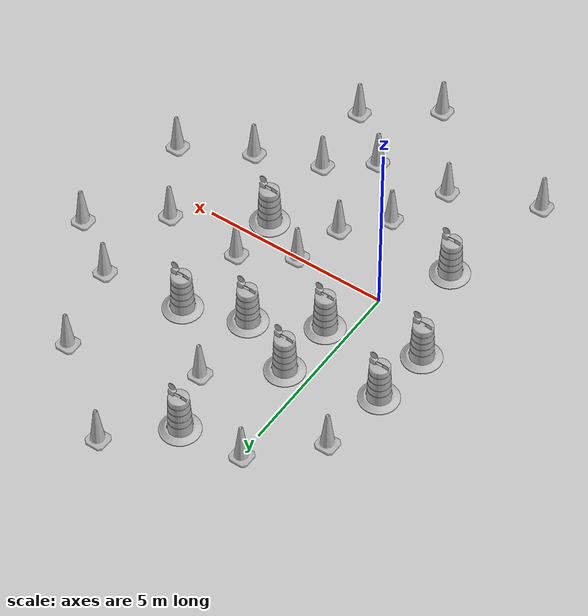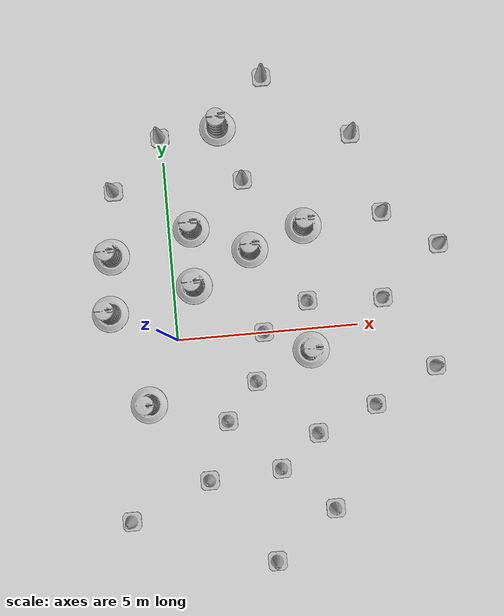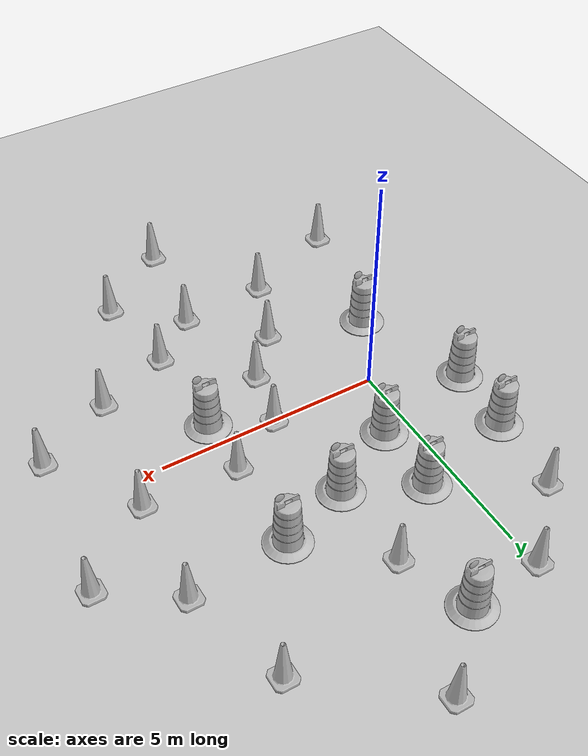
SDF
<sdf version="1.7">
 <world name="default">
  <light name="sun" type="directional">
   <pose>0 0 10 0 -0 0</pose>
   <diffuse>0.8 0.8 0.8 1</diffuse>
   <specular>0.2 0.2 0.2 1</specular>
   <attenuation>
    <range>1000</range>
    <constant>0.9</constant>
    <linear>0.01</linear>
    <quadratic>0.001</quadratic>
   </attenuation>
   <direction>-0.5 0.1 -0.9</direction>
   <spot><inner_angle>0</inner_angle><outer_angle>0</outer_angle><falloff>0</falloff></spot>
  </light>
  <model name="ground_plane">
   <static>1</static>
   <link name="link">
    <collision name="collision">
     <geometry><plane><normal>0 0 1</normal><size>100 100</size></plane></geometry>
     <surface>
      <contact><collide_bitmask>65535</collide_bitmask></contact>
      <friction><ode><mu>100</mu><mu2>50</mu2></ode></friction>
     </surface>
    </collision>
    <visual name="visual">
     <cast_shadows>0</cast_shadows>
     <geometry><plane><normal>0 0 1</normal><size>100 100</size></plane></geometry>
     <material>
      <script><uri>file://media/materials/scripts/gazebo.material</uri><name>Gazebo/Grey</name></script>
     </material>
    </visual>
   </link>
  </model>
  <gravity>0 0 -9.8</gravity>
  <magnetic_field>6e-06 2.3e-05 -4.2e-05</magnetic_field>
  <atmosphere type="adiabatic"/>
  <physics type="ode">
   <max_step_size>0.001</max_step_size>
   <real_time_factor>1</real_time_factor>
   <real_time_update_rate>1000</real_time_update_rate>
  </physics>
  <scene><ambient>0.4 0.4 0.4 1</ambient><background>0.7 0.7 0.7 1</background><shadows>1</shadows></scene>
  <audio><device>default</device></audio>
  <spherical_coordinates>
   <surface_model>EARTH_WGS84</surface_model>
   <latitude_deg>0</latitude_deg>
   <longitude_deg>0</longitude_deg>
   <elevation>0</elevation>
   <heading_deg>0</heading_deg>
  </spherical_coordinates>
  <model name="Construction Barrel">
   <link name="link">
    <inertial>
     <pose>0 0 0.4 0 -0 0</pose>
     <mass>500</mass>
     <inertia><ixx>51.2096</ixx><iyy>51.2096</iyy><izz>25</izz><ixy>0</ixy><ixz>0</ixz><iyz>0</iyz></inertia>
    </inertial>
    <collision name="collision">
     <geometry><mesh><uri>model://construction_barrel/meshes/construction_barrel.dae</uri></mesh></geometry>
    </collision>
    <visual name="visual">
     <geometry><mesh><uri>model://construction_barrel/meshes/construction_barrel.dae</uri></mesh></geometry>
    </visual>
   </link>
   <pose>0.576127 1.46314 -0 0 -0 -4.7e-05</pose>
  </model>
  <model name="Construction Barrel_clone">
   <link name="link">
    <inertial>
     <pose>0 0 0.4 0 -0 0</pose>
     <mass>500</mass>
     <inertia><ixx>51.2096</ixx><iyy>51.2096</iyy><izz>25</izz><ixy>0</ixy><ixz>0</ixz><iyz>0</iyz></inertia>
    </inertial>
    <collision name="collision">
     <geometry><mesh><uri>model://construction_barrel/meshes/construction_barrel.dae</uri></mesh></geometry>
    </collision>
    <visual name="visual">
     <geometry><mesh><uri>model://construction_barrel/meshes/construction_barrel.dae</uri></mesh></geometry>
    </visual>
   </link>
   <pose>2.20647 2.34684 -0 0 -0 -4.8e-05</pose>
  </model>
  <model name="Construction Cone">
   <link name="link">
    <collision name="collision">
     <geometry>
      <mesh><scale>10 10 10</scale><uri>model://construction_cone/meshes/construction_cone.dae</uri></mesh>
     </geometry>
    </collision>
    <visual name="visual">
     <geometry>
      <mesh><scale>10 10 10</scale><uri>model://construction_cone/meshes/construction_cone.dae</uri></mesh>
     </geometry>
    </visual>
    <inertial>
     <inertia><ixx>1</ixx><ixy>0</ixy><ixz>0</ixz><iyy>1</iyy><iyz>0</iyz><izz>1</izz></inertia>
     <mass>1</mass>
    </inertial>
   </link>
   <pose>2.39677 0.015215 -0 0 -0 0</pose>
  </model>
  <model name="Construction Cone_clone">
   <link name="link">
    <collision name="collision">
     <geometry>
      <mesh><scale>10 10 10</scale><uri>model://construction_cone/meshes/construction_cone.dae</uri></mesh>
     </geometry>
    </collision>
    <visual name="visual">
     <geometry>
      <mesh><scale>10 10 10</scale><uri>model://construction_cone/meshes/construction_cone.dae</uri></mesh>
     </geometry>
    </visual>
    <inertial>
     <inertia><ixx>1</ixx><ixy>0</ixy><ixz>0</ixz><iyy>1</iyy><iyz>0</iyz><izz>1</izz></inertia>
     <mass>1</mass>
    </inertial>
   </link>
   <pose>3.67537 0.7858 -0 0 -1e-06 0</pose>
  </model>
  <model name="Construction Cone_clone_0">
   <link name="link">
    <collision name="collision">
     <geometry>
      <mesh><scale>10 10 10</scale><uri>model://construction_cone/meshes/construction_cone.dae</uri></mesh>
     </geometry>
    </collision>
    <visual name="visual">
     <geometry>
      <mesh><scale>10 10 10</scale><uri>model://construction_cone/meshes/construction_cone.dae</uri></mesh>
     </geometry>
    </visual>
    <inertial>
     <inertia><ixx>1</ixx><ixy>0</ixy><ixz>0</ixz><iyy>1</iyy><iyz>0</iyz><izz>1</izz></inertia>
     <mass>1</mass>
    </inertial>
   </link>
   <pose>2.08 -1.31616 -0 0 -1e-06 0</pose>
  </model>
  <model name="Construction Barrel_clone_0">
   <link name="link">
    <inertial>
     <pose>0 0 0.4 0 -0 0</pose>
     <mass>500</mass>
     <inertia><ixx>51.2096</ixx><iyy>51.2096</iyy><izz>25</izz><ixy>0</ixy><ixz>0</ixz><iyz>0</iyz></inertia>
    </inertial>
    <collision name="collision">
     <geometry><mesh><uri>model://construction_barrel/meshes/construction_barrel.dae</uri></mesh></geometry>
    </collision>
    <visual name="visual">
     <geometry><mesh><uri>model://construction_barrel/meshes/construction_barrel.dae</uri></mesh></geometry>
    </visual>
   </link>
   <pose>-1.80175 0.891478 -0 1e-06 -1e-06 -5e-05</pose>
  </model>
  <model name="Construction Barrel_clone_1">
   <link name="link">
    <inertial>
     <pose>0 0 0.4 0 -0 0</pose>
     <mass>500</mass>
     <inertia><ixx>51.2096</ixx><iyy>51.2096</iyy><izz>25</izz><ixy>0</ixy><ixz>0</ixz><iyz>0</iyz></inertia>
    </inertial>
    <collision name="collision">
     <geometry><mesh><uri>model://construction_barrel/meshes/construction_barrel.dae</uri></mesh></geometry>
    </collision>
    <visual name="visual">
     <geometry><mesh><uri>model://construction_barrel/meshes/construction_barrel.dae</uri></mesh></geometry>
    </visual>
   </link>
   <pose>-1.65112 2.47933 -2e-06 1e-06 8e-06 -3.6e-05</pose>
  </model>
  <model name="Construction Barrel_clone_2">
   <link name="link">
    <inertial>
     <pose>0 0 0.4 0 -0 0</pose>
     <mass>500</mass>
     <inertia><ixx>51.2096</ixx><iyy>51.2096</iyy><izz>25</izz><ixy>0</ixy><ixz>0</ixz><iyz>0</iyz></inertia>
    </inertial>
    <collision name="collision">
     <geometry><mesh><uri>model://construction_barrel/meshes/construction_barrel.dae</uri></mesh></geometry>
    </collision>
    <visual name="visual">
     <geometry><mesh><uri>model://construction_barrel/meshes/construction_barrel.dae</uri></mesh></geometry>
    </visual>
   </link>
   <pose>0.621395 3.06628 -0 1e-06 -1e-06 -4.4e-05</pose>
  </model>
  <model name="Construction Barrel_clone_3">
   <link name="link">
    <inertial>
     <pose>0 0 0.4 0 -0 0</pose>
     <mass>500</mass>
     <inertia><ixx>51.2096</ixx><iyy>51.2096</iyy><izz>25</izz><ixy>0</ixy><ixz>0</ixz><iyz>0</iyz></inertia>
    </inertial>
    <collision name="collision">
     <geometry><mesh><uri>model://construction_barrel/meshes/construction_barrel.dae</uri></mesh></geometry>
    </collision>
    <visual name="visual">
     <geometry><mesh><uri>model://construction_barrel/meshes/construction_barrel.dae</uri></mesh></geometry>
    </visual>
   </link>
   <pose>3.65252 -0.577829 -2e-06 -7e-06 -4e-06 -3.6e-05</pose>
  </model>
  <model name="Construction Barrel_clone_4">
   <link name="link">
    <inertial>
     <pose>0 0 0.4 0 -0 0</pose>
     <mass>500</mass>
     <inertia><ixx>51.2096</ixx><iyy>51.2096</iyy><izz>25</izz><ixy>0</ixy><ixz>0</ixz><iyz>0</iyz></inertia>
    </inertial>
    <collision name="collision">
     <geometry><mesh><uri>model://construction_barrel/meshes/construction_barrel.dae</uri></mesh></geometry>
    </collision>
    <visual name="visual">
     <geometry><mesh><uri>model://construction_barrel/meshes/construction_barrel.dae</uri></mesh></geometry>
    </visual>
   </link>
   <pose>3.74689 2.88945 -0 0 -0 -4.5e-05</pose>
  </model>
  <model name="Construction Barrel_clone_5">
   <link name="link">
    <inertial>
     <pose>0 0 0.4 0 -0 0</pose>
     <mass>500</mass>
     <inertia><ixx>51.2096</ixx><iyy>51.2096</iyy><izz>25</izz><ixy>0</ixy><ixz>0</ixz><iyz>0</iyz></inertia>
    </inertial>
    <collision name="collision">
     <geometry><mesh><uri>model://construction_barrel/meshes/construction_barrel.dae</uri></mesh></geometry>
    </collision>
    <visual name="visual">
     <geometry><mesh><uri>model://construction_barrel/meshes/construction_barrel.dae</uri></mesh></geometry>
    </visual>
   </link>
   <pose>-0.926009 -1.70389 -0 0 -0 -4.5e-05</pose>
  </model>
  <model name="Construction Barrel_clone_6">
   <link name="link">
    <inertial>
     <pose>0 0 0.4 0 -0 0</pose>
     <mass>500</mass>
     <inertia><ixx>51.2096</ixx><iyy>51.2096</iyy><izz>25</izz><ixy>0</ixy><ixz>0</ixz><iyz>0</iyz></inertia>
    </inertial>
    <collision name="collision">
     <geometry><mesh><uri>model://construction_barrel/meshes/construction_barrel.dae</uri></mesh></geometry>
    </collision>
    <visual name="visual">
     <geometry><mesh><uri>model://construction_barrel/meshes/construction_barrel.dae</uri></mesh></geometry>
    </visual>
   </link>
   <pose>1.59766 5.86181 -1e-06 1e-06 -9e-06 -3e-05</pose>
  </model>
  <model name="Construction Cone_clone_1">
   <link name="link">
    <collision name="collision">
     <geometry>
      <mesh><scale>10 10 10</scale><uri>model://construction_cone/meshes/construction_cone.dae</uri></mesh>
     </geometry>
    </collision>
    <visual name="visual">
     <geometry>
      <mesh><scale>10 10 10</scale><uri>model://construction_cone/meshes/construction_cone.dae</uri></mesh>
     </geometry>
    </visual>
    <inertial>
     <inertia><ixx>1</ixx><ixy>0</ixy><ixz>0</ixz><iyy>1</iyy><iyz>0</iyz><izz>1</izz></inertia>
     <mass>1</mass>
    </inertial>
   </link>
   <pose>2.16686 4.32338 -0 0 -1e-06 0</pose>
  </model>
  <model name="Construction Cone_clone_2">
   <link name="link">
    <collision name="collision">
     <geometry>
      <mesh><scale>10 10 10</scale><uri>model://construction_cone/meshes/construction_cone.dae</uri></mesh>
     </geometry>
    </collision>
    <visual name="visual">
     <geometry>
      <mesh><scale>10 10 10</scale><uri>model://construction_cone/meshes/construction_cone.dae</uri></mesh>
     </geometry>
    </visual>
    <inertial>
     <inertia><ixx>1</ixx><ixy>0</ixy><ixz>0</ixz><iyy>1</iyy><iyz>0</iyz><izz>1</izz></inertia>
     <mass>1</mass>
    </inertial>
   </link>
   <pose>-0.043697 5.71029 -0 0 -1e-06 0</pose>
  </model>
  <model name="Construction Cone_clone_3">
   <link name="link">
    <collision name="collision">
     <geometry>
      <mesh><scale>10 10 10</scale><uri>model://construction_cone/meshes/construction_cone.dae</uri></mesh>
     </geometry>
    </collision>
    <visual name="visual">
     <geometry>
      <mesh><scale>10 10 10</scale><uri>model://construction_cone/meshes/construction_cone.dae</uri></mesh>
     </geometry>
    </visual>
    <inertial>
     <inertia><ixx>1</ixx><ixy>0</ixy><ixz>0</ixz><iyy>1</iyy><iyz>0</iyz><izz>1</izz></inertia>
     <mass>1</mass>
    </inertial>
   </link>
   <pose>-1.45349 4.30077 -0 0 -1e-06 0</pose>
  </model>
  <model name="Construction Cone_clone_4">
   <link name="link">
    <collision name="collision">
     <geometry>
      <mesh><scale>10 10 10</scale><uri>model://construction_cone/meshes/construction_cone.dae</uri></mesh>
     </geometry>
    </collision>
    <visual name="visual">
     <geometry>
      <mesh><scale>10 10 10</scale><uri>model://construction_cone/meshes/construction_cone.dae</uri></mesh>
     </geometry>
    </visual>
    <inertial>
     <inertia><ixx>1</ixx><ixy>0</ixy><ixz>0</ixz><iyy>1</iyy><iyz>0</iyz><izz>1</izz></inertia>
     <mass>1</mass>
    </inertial>
   </link>
   <pose>1.20687 -2.33555 -0 0 -1e-06 0</pose>
  </model>
  <model name="Construction Cone_clone_5">
   <link name="link">
    <collision name="collision">
     <geometry>
      <mesh><scale>10 10 10</scale><uri>model://construction_cone/meshes/construction_cone.dae</uri></mesh>
     </geometry>
    </collision>
    <visual name="visual">
     <geometry>
      <mesh><scale>10 10 10</scale><uri>model://construction_cone/meshes/construction_cone.dae</uri></mesh>
     </geometry>
    </visual>
    <inertial>
     <inertia><ixx>1</ixx><ixy>0</ixy><ixz>0</ixz><iyy>1</iyy><iyz>0</iyz><izz>1</izz></inertia>
     <mass>1</mass>
    </inertial>
   </link>
   <pose>0.569266 -3.90162 -0 0 -1e-06 0</pose>
  </model>
  <model name="Construction Cone_clone_6">
   <link name="link">
    <collision name="collision">
     <geometry>
      <mesh><scale>10 10 10</scale><uri>model://construction_cone/meshes/construction_cone.dae</uri></mesh>
     </geometry>
    </collision>
    <visual name="visual">
     <geometry>
      <mesh><scale>10 10 10</scale><uri>model://construction_cone/meshes/construction_cone.dae</uri></mesh>
     </geometry>
    </visual>
    <inertial>
     <inertia><ixx>1</ixx><ixy>0</ixy><ixz>0</ixz><iyy>1</iyy><iyz>0</iyz><izz>1</izz></inertia>
     <mass>1</mass>
    </inertial>
   </link>
   <pose>2.55706 -3.7535 -0 0 -1e-06 0</pose>
  </model>
  <model name="Construction Cone_clone_7">
   <link name="link">
    <collision name="collision">
     <geometry>
      <mesh><scale>10 10 10</scale><uri>model://construction_cone/meshes/construction_cone.dae</uri></mesh>
     </geometry>
    </collision>
    <visual name="visual">
     <geometry>
      <mesh><scale>10 10 10</scale><uri>model://construction_cone/meshes/construction_cone.dae</uri></mesh>
     </geometry>
    </visual>
    <inertial>
     <inertia><ixx>1</ixx><ixy>0</ixy><ixz>0</ixz><iyy>1</iyy><iyz>0</iyz><izz>1</izz></inertia>
     <mass>1</mass>
    </inertial>
   </link>
   <pose>3.64881 -2.8718 -0 0 -0 0</pose>
  </model>
  <model name="Construction Cone_clone_8">
   <link name="link">
    <collision name="collision">
     <geometry>
      <mesh><scale>10 10 10</scale><uri>model://construction_cone/meshes/construction_cone.dae</uri></mesh>
     </geometry>
    </collision>
    <visual name="visual">
     <geometry>
      <mesh><scale>10 10 10</scale><uri>model://construction_cone/meshes/construction_cone.dae</uri></mesh>
     </geometry>
    </visual>
    <inertial>
     <inertia><ixx>1</ixx><ixy>0</ixy><ixz>0</ixz><iyy>1</iyy><iyz>0</iyz><izz>1</izz></inertia>
     <mass>1</mass>
    </inertial>
   </link>
   <pose>5.30265 -2.2284 -0 0 -1e-06 0</pose>
  </model>
  <model name="Construction Cone_clone_9">
   <link name="link">
    <collision name="collision">
     <geometry>
      <mesh><scale>10 10 10</scale><uri>model://construction_cone/meshes/construction_cone.dae</uri></mesh>
     </geometry>
    </collision>
    <visual name="visual">
     <geometry>
      <mesh><scale>10 10 10</scale><uri>model://construction_cone/meshes/construction_cone.dae</uri></mesh>
     </geometry>
    </visual>
    <inertial>
     <inertia><ixx>1</ixx><ixy>0</ixy><ixz>0</ixz><iyy>1</iyy><iyz>0</iyz><izz>1</izz></inertia>
     <mass>1</mass>
    </inertial>
   </link>
   <pose>5.76601 0.689023 -0 0 -1e-06 0</pose>
  </model>
  <model name="Construction Cone_clone_10">
   <link name="link">
    <collision name="collision">
     <geometry>
      <mesh><scale>10 10 10</scale><uri>model://construction_cone/meshes/construction_cone.dae</uri></mesh>
     </geometry>
    </collision>
    <visual name="visual">
     <geometry>
      <mesh><scale>10 10 10</scale><uri>model://construction_cone/meshes/construction_cone.dae</uri></mesh>
     </geometry>
    </visual>
    <inertial>
     <inertia><ixx>1</ixx><ixy>0</ixy><ixz>0</ixz><iyy>1</iyy><iyz>0</iyz><izz>1</izz></inertia>
     <mass>1</mass>
    </inertial>
   </link>
   <pose>2.21984 -6.22029 -0 0 -1e-06 0</pose>
  </model>
  <model name="Construction Cone_clone_11">
   <link name="link">
    <collision name="collision">
     <geometry>
      <mesh><scale>10 10 10</scale><uri>model://construction_cone/meshes/construction_cone.dae</uri></mesh>
     </geometry>
    </collision>
    <visual name="visual">
     <geometry>
      <mesh><scale>10 10 10</scale><uri>model://construction_cone/meshes/construction_cone.dae</uri></mesh>
     </geometry>
    </visual>
    <inertial>
     <inertia><ixx>1</ixx><ixy>0</ixy><ixz>0</ixz><iyy>1</iyy><iyz>0</iyz><izz>1</izz></inertia>
     <mass>1</mass>
    </inertial>
   </link>
   <pose>3.92889 -4.94535 -0 1e-06 -0 0</pose>
  </model>
  <model name="Construction Cone_clone_12">
   <link name="link">
    <collision name="collision">
     <geometry>
      <mesh><scale>10 10 10</scale><uri>model://construction_cone/meshes/construction_cone.dae</uri></mesh>
     </geometry>
    </collision>
    <visual name="visual">
     <geometry>
      <mesh><scale>10 10 10</scale><uri>model://construction_cone/meshes/construction_cone.dae</uri></mesh>
     </geometry>
    </visual>
    <inertial>
     <inertia><ixx>1</ixx><ixy>0</ixy><ixz>0</ixz><iyy>1</iyy><iyz>0</iyz><izz>1</izz></inertia>
     <mass>1</mass>
    </inertial>
   </link>
   <pose>-1.63351 -4.81982 -0 0 -1e-06 0</pose>
  </model>
  <model name="Construction Cone_clone_13">
   <link name="link">
    <collision name="collision">
     <geometry>
      <mesh><scale>10 10 10</scale><uri>model://construction_cone/meshes/construction_cone.dae</uri></mesh>
     </geometry>
    </collision>
    <visual name="visual">
     <geometry>
      <mesh><scale>10 10 10</scale><uri>model://construction_cone/meshes/construction_cone.dae</uri></mesh>
     </geometry>
    </visual>
    <inertial>
     <inertia><ixx>1</ixx><ixy>0</ixy><ixz>0</ixz><iyy>1</iyy><iyz>0</iyz><izz>1</izz></inertia>
     <mass>1</mass>
    </inertial>
   </link>
   <pose>5.29028 5.36561 -0 0 -1e-06 0</pose>
  </model>
  <model name="Construction Cone_clone_14">
   <link name="link">
    <collision name="collision">
     <geometry>
      <mesh><scale>10 10 10</scale><uri>model://construction_cone/meshes/construction_cone.dae</uri></mesh>
     </geometry>
    </collision>
    <visual name="visual">
     <geometry>
      <mesh><scale>10 10 10</scale><uri>model://construction_cone/meshes/construction_cone.dae</uri></mesh>
     </geometry>
    </visual>
    <inertial>
     <inertia><ixx>1</ixx><ixy>0</ixy><ixz>0</ixz><iyy>1</iyy><iyz>0</iyz><izz>1</izz></inertia>
     <mass>1</mass>
    </inertial>
   </link>
   <pose>2.94916 7.20521 -0 0 -1e-06 0</pose>
  </model>
  <model name="Construction Cone_clone_15">
   <link name="link">
    <collision name="collision">
     <geometry>
      <mesh><scale>10 10 10</scale><uri>model://construction_cone/meshes/construction_cone.dae</uri></mesh>
     </geometry>
    </collision>
    <visual name="visual">
     <geometry>
      <mesh><scale>10 10 10</scale><uri>model://construction_cone/meshes/construction_cone.dae</uri></mesh>
     </geometry>
    </visual>
    <inertial>
     <inertia><ixx>1</ixx><ixy>0</ixy><ixz>0</ixz><iyy>1</iyy><iyz>0</iyz><izz>1</izz></inertia>
     <mass>1</mass>
    </inertial>
   </link>
   <pose>7.0466 -1.32037 -0 0 -1e-06 0</pose>
  </model>
  <model name="Construction Cone_clone_16">
   <link name="link">
    <collision name="collision">
     <geometry>
      <mesh><scale>10 10 10</scale><uri>model://construction_cone/meshes/construction_cone.dae</uri></mesh>
     </geometry>
    </collision>
    <visual name="visual">
     <geometry>
      <mesh><scale>10 10 10</scale><uri>model://construction_cone/meshes/construction_cone.dae</uri></mesh>
     </geometry>
    </visual>
    <inertial>
     <inertia><ixx>1</ixx><ixy>0</ixy><ixz>0</ixz><iyy>1</iyy><iyz>0</iyz><izz>1</izz></inertia>
     <mass>1</mass>
    </inertial>
   </link>
   <pose>7.44631 2.05163 -0 1e-06 -0 0</pose>
  </model>
  <model name="Construction Cone_clone_17">
   <link name="link">
    <collision name="collision">
     <geometry>
      <mesh><scale>10 10 10</scale><uri>model://construction_cone/meshes/construction_cone.dae</uri></mesh>
     </geometry>
    </collision>
    <visual name="visual">
     <geometry>
      <mesh><scale>10 10 10</scale><uri>model://construction_cone/meshes/construction_cone.dae</uri></mesh>
     </geometry>
    </visual>
    <inertial>
     <inertia><ixx>1</ixx><ixy>0</ixy><ixz>0</ixz><iyy>1</iyy><iyz>0</iyz><izz>1</izz></inertia>
     <mass>1</mass>
    </inertial>
   </link>
   <pose>5.95733 3.08124 -0 0 -1e-06 0</pose>
  </model>
 </world>
</sdf>
